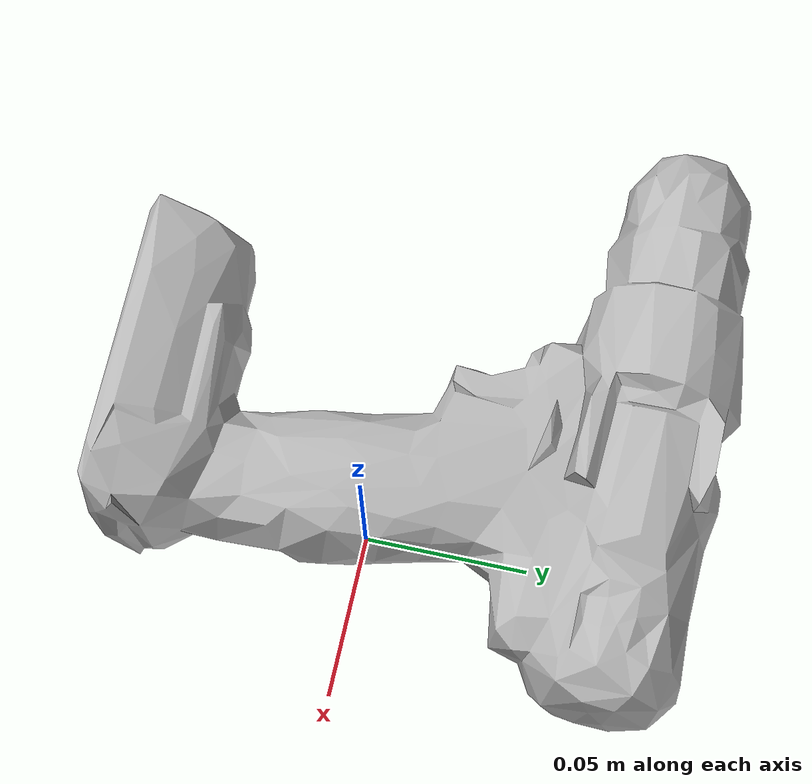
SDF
<?xml version="1.0" ?>
<sdf version="1.4">
  <model name='ycb_035_power_drill'>
    <link name='body'>
      <inertial>
        <mass>0.895</mass>
        <pose>-0.0307146913476 0.0243508456459 0.0235676339867 0 0 0</pose>
        <inertia>
          <ixx>0.0035697177387</ixx>
          <ixy>0.000368078951081</ixy>
          <ixz>2.83382913675e-05</ixz>
          <iyy>0.0014562028131</iyy>
          <iyz>7.2244533946e-05</iyz>
          <izz>0.00478248258153</izz>
        </inertia>
      </inertial>
      <visual name='ycb_035_power_drill_visual'>
        <pose>0 0 0 0 0 0</pose>
        <geometry>
          <mesh>
            <uri>model://ycb_035_power_drill/meshes/textured.dae</uri>
          </mesh>
        </geometry>
      </visual>
      <collision name='ycb_035_power_drill_collision'>
        <pose>0 0 0 0 0 0</pose>
        <geometry>
          <mesh>
            <uri>model://ycb_035_power_drill/meshes/nontextured.stl</uri>
          </mesh>
        </geometry>
        <max_contacts>10</max_contacts>
        <surface>
          <contact>
            <ode>
              <kp>1e15</kp>
              <kd>1e13</kd>
            </ode>
          </contact>
        </surface>
      </collision>
    </link>
  </model>
</sdf>
